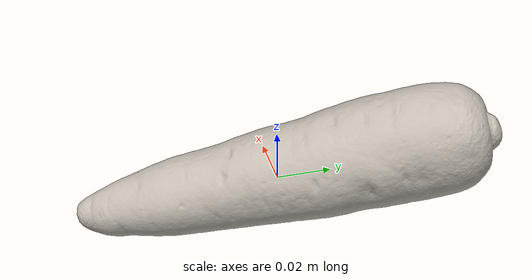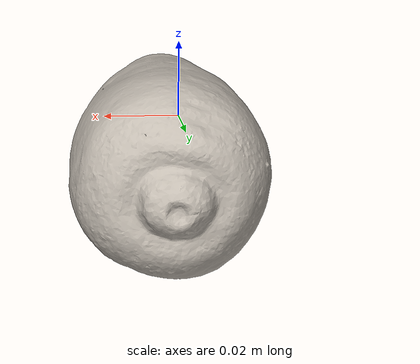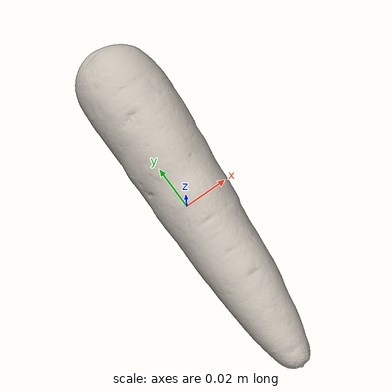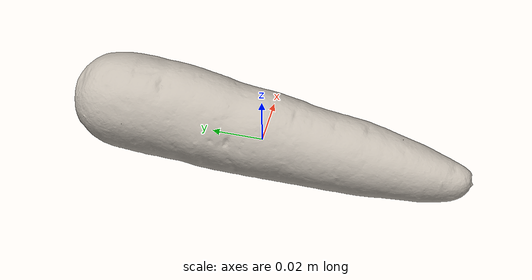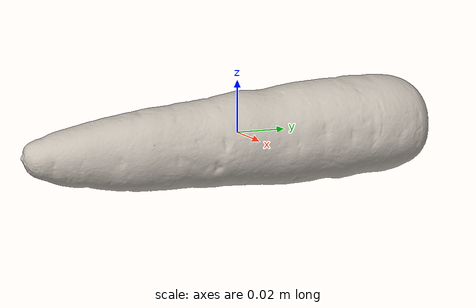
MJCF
<mujoco model="carrot_10">
  <asset>
    <mesh file="visual/model_normalized_0.obj" name="model_normalized_0_vis" scale="0.15999999999999998 0.15999999999999998 0.15999999999999998" refquat="0.6343932841636455 0.0 0.0 0.773010453362737"/>
    <mesh file="collision/model_normalized_collision_22.obj" name="model_normalized_collision_22._coll" scale="0.15999999999999998 0.15999999999999998 0.15999999999999998" refquat="0.6343932841636455 0.0 0.0 0.773010453362737"/>
    <mesh file="collision/model_normalized_collision_23.obj" name="model_normalized_collision_23._coll" scale="0.15999999999999998 0.15999999999999998 0.15999999999999998" refquat="0.6343932841636455 0.0 0.0 0.773010453362737"/>
    <mesh file="collision/model_normalized_collision_21.obj" name="model_normalized_collision_21._coll" scale="0.15999999999999998 0.15999999999999998 0.15999999999999998" refquat="0.6343932841636455 0.0 0.0 0.773010453362737"/>
    <mesh file="collision/model_normalized_collision_20.obj" name="model_normalized_collision_20._coll" scale="0.15999999999999998 0.15999999999999998 0.15999999999999998" refquat="0.6343932841636455 0.0 0.0 0.773010453362737"/>
    <mesh file="collision/model_normalized_collision_24.obj" name="model_normalized_collision_24._coll" scale="0.15999999999999998 0.15999999999999998 0.15999999999999998" refquat="0.6343932841636455 0.0 0.0 0.773010453362737"/>
    <mesh file="collision/model_normalized_collision_30.obj" name="model_normalized_collision_30._coll" scale="0.15999999999999998 0.15999999999999998 0.15999999999999998" refquat="0.6343932841636455 0.0 0.0 0.773010453362737"/>
    <mesh file="collision/model_normalized_collision_18.obj" name="model_normalized_collision_18._coll" scale="0.15999999999999998 0.15999999999999998 0.15999999999999998" refquat="0.6343932841636455 0.0 0.0 0.773010453362737"/>
    <mesh file="collision/model_normalized_collision_19.obj" name="model_normalized_collision_19._coll" scale="0.15999999999999998 0.15999999999999998 0.15999999999999998" refquat="0.6343932841636455 0.0 0.0 0.773010453362737"/>
    <mesh file="collision/model_normalized_collision_31.obj" name="model_normalized_collision_31._coll" scale="0.15999999999999998 0.15999999999999998 0.15999999999999998" refquat="0.6343932841636455 0.0 0.0 0.773010453362737"/>
    <mesh file="collision/model_normalized_collision_25.obj" name="model_normalized_collision_25._coll" scale="0.15999999999999998 0.15999999999999998 0.15999999999999998" refquat="0.6343932841636455 0.0 0.0 0.773010453362737"/>
    <mesh file="collision/model_normalized_collision_27.obj" name="model_normalized_collision_27._coll" scale="0.15999999999999998 0.15999999999999998 0.15999999999999998" refquat="0.6343932841636455 0.0 0.0 0.773010453362737"/>
    <mesh file="collision/model_normalized_collision_26.obj" name="model_normalized_collision_26._coll" scale="0.15999999999999998 0.15999999999999998 0.15999999999999998" refquat="0.6343932841636455 0.0 0.0 0.773010453362737"/>
    <mesh file="collision/model_normalized_collision_9.obj" name="model_normalized_collision_9._coll" scale="0.15999999999999998 0.15999999999999998 0.15999999999999998" refquat="0.6343932841636455 0.0 0.0 0.773010453362737"/>
    <mesh file="collision/model_normalized_collision_8.obj" name="model_normalized_collision_8._coll" scale="0.15999999999999998 0.15999999999999998 0.15999999999999998" refquat="0.6343932841636455 0.0 0.0 0.773010453362737"/>
    <mesh file="collision/model_normalized_collision_6.obj" name="model_normalized_collision_6._coll" scale="0.15999999999999998 0.15999999999999998 0.15999999999999998" refquat="0.6343932841636455 0.0 0.0 0.773010453362737"/>
    <mesh file="collision/model_normalized_collision_7.obj" name="model_normalized_collision_7._coll" scale="0.15999999999999998 0.15999999999999998 0.15999999999999998" refquat="0.6343932841636455 0.0 0.0 0.773010453362737"/>
    <mesh file="collision/model_normalized_collision_5.obj" name="model_normalized_collision_5._coll" scale="0.15999999999999998 0.15999999999999998 0.15999999999999998" refquat="0.6343932841636455 0.0 0.0 0.773010453362737"/>
    <mesh file="collision/model_normalized_collision_4.obj" name="model_normalized_collision_4._coll" scale="0.15999999999999998 0.15999999999999998 0.15999999999999998" refquat="0.6343932841636455 0.0 0.0 0.773010453362737"/>
    <mesh file="collision/model_normalized_collision_0.obj" name="model_normalized_collision_0._coll" scale="0.15999999999999998 0.15999999999999998 0.15999999999999998" refquat="0.6343932841636455 0.0 0.0 0.773010453362737"/>
    <mesh file="collision/model_normalized_collision_1.obj" name="model_normalized_collision_1._coll" scale="0.15999999999999998 0.15999999999999998 0.15999999999999998" refquat="0.6343932841636455 0.0 0.0 0.773010453362737"/>
    <mesh file="collision/model_normalized_collision_3.obj" name="model_normalized_collision_3._coll" scale="0.15999999999999998 0.15999999999999998 0.15999999999999998" refquat="0.6343932841636455 0.0 0.0 0.773010453362737"/>
    <mesh file="collision/model_normalized_collision_2.obj" name="model_normalized_collision_2._coll" scale="0.15999999999999998 0.15999999999999998 0.15999999999999998" refquat="0.6343932841636455 0.0 0.0 0.773010453362737"/>
    <mesh file="collision/model_normalized_collision_17.obj" name="model_normalized_collision_17._coll" scale="0.15999999999999998 0.15999999999999998 0.15999999999999998" refquat="0.6343932841636455 0.0 0.0 0.773010453362737"/>
    <mesh file="collision/model_normalized_collision_16.obj" name="model_normalized_collision_16._coll" scale="0.15999999999999998 0.15999999999999998 0.15999999999999998" refquat="0.6343932841636455 0.0 0.0 0.773010453362737"/>
    <mesh file="collision/model_normalized_collision_28.obj" name="model_normalized_collision_28._coll" scale="0.15999999999999998 0.15999999999999998 0.15999999999999998" refquat="0.6343932841636455 0.0 0.0 0.773010453362737"/>
    <mesh file="collision/model_normalized_collision_14.obj" name="model_normalized_collision_14._coll" scale="0.15999999999999998 0.15999999999999998 0.15999999999999998" refquat="0.6343932841636455 0.0 0.0 0.773010453362737"/>
    <mesh file="collision/model_normalized_collision_15.obj" name="model_normalized_collision_15._coll" scale="0.15999999999999998 0.15999999999999998 0.15999999999999998" refquat="0.6343932841636455 0.0 0.0 0.773010453362737"/>
    <mesh file="collision/model_normalized_collision_29.obj" name="model_normalized_collision_29._coll" scale="0.15999999999999998 0.15999999999999998 0.15999999999999998" refquat="0.6343932841636455 0.0 0.0 0.773010453362737"/>
    <mesh file="collision/model_normalized_collision_11.obj" name="model_normalized_collision_11._coll" scale="0.15999999999999998 0.15999999999999998 0.15999999999999998" refquat="0.6343932841636455 0.0 0.0 0.773010453362737"/>
    <mesh file="collision/model_normalized_collision_10.obj" name="model_normalized_collision_10._coll" scale="0.15999999999999998 0.15999999999999998 0.15999999999999998" refquat="0.6343932841636455 0.0 0.0 0.773010453362737"/>
    <mesh file="collision/model_normalized_collision_12.obj" name="model_normalized_collision_12._coll" scale="0.15999999999999998 0.15999999999999998 0.15999999999999998" refquat="0.6343932841636455 0.0 0.0 0.773010453362737"/>
    <mesh file="collision/model_normalized_collision_13.obj" name="model_normalized_collision_13._coll" scale="0.15999999999999998 0.15999999999999998 0.15999999999999998" refquat="0.6343932841636455 0.0 0.0 0.773010453362737"/>
    <texture type="2d" name="image0" file="visual/image0.png"/>
    <material name="material_0.023" texture="image0" specular="0.5" shininess="0.359999993"/>
  </asset>
  <worldbody>
  <body>
      <body name="object">
        <geom solimp="0.998 0.998 0.001" solref="0.001 1" density="100" friction="0.95 0.3 0.1" type="mesh" mesh="model_normalized_0_vis" conaffinity="0" contype="0" group="1" material="material_0.023"/>
        <geom solimp="0.998 0.998 0.001" solref="0.001 1" density="100" friction="0.95 0.3 0.1" type="mesh" mesh="model_normalized_collision_22._coll" group="0" rgba="0.8 0.8 0.8 0.0"/>
        <geom solimp="0.998 0.998 0.001" solref="0.001 1" density="100" friction="0.95 0.3 0.1" type="mesh" mesh="model_normalized_collision_23._coll" group="0" rgba="0.8 0.8 0.8 0.0"/>
        <geom solimp="0.998 0.998 0.001" solref="0.001 1" density="100" friction="0.95 0.3 0.1" type="mesh" mesh="model_normalized_collision_21._coll" group="0" rgba="0.8 0.8 0.8 0.0"/>
        <geom solimp="0.998 0.998 0.001" solref="0.001 1" density="100" friction="0.95 0.3 0.1" type="mesh" mesh="model_normalized_collision_20._coll" group="0" rgba="0.8 0.8 0.8 0.0"/>
        <geom solimp="0.998 0.998 0.001" solref="0.001 1" density="100" friction="0.95 0.3 0.1" type="mesh" mesh="model_normalized_collision_24._coll" group="0" rgba="0.8 0.8 0.8 0.0"/>
        <geom solimp="0.998 0.998 0.001" solref="0.001 1" density="100" friction="0.95 0.3 0.1" type="mesh" mesh="model_normalized_collision_30._coll" group="0" rgba="0.8 0.8 0.8 0.0"/>
        <geom solimp="0.998 0.998 0.001" solref="0.001 1" density="100" friction="0.95 0.3 0.1" type="mesh" mesh="model_normalized_collision_18._coll" group="0" rgba="0.8 0.8 0.8 0.0"/>
        <geom solimp="0.998 0.998 0.001" solref="0.001 1" density="100" friction="0.95 0.3 0.1" type="mesh" mesh="model_normalized_collision_19._coll" group="0" rgba="0.8 0.8 0.8 0.0"/>
        <geom solimp="0.998 0.998 0.001" solref="0.001 1" density="100" friction="0.95 0.3 0.1" type="mesh" mesh="model_normalized_collision_31._coll" group="0" rgba="0.8 0.8 0.8 0.0"/>
        <geom solimp="0.998 0.998 0.001" solref="0.001 1" density="100" friction="0.95 0.3 0.1" type="mesh" mesh="model_normalized_collision_25._coll" group="0" rgba="0.8 0.8 0.8 0.0"/>
        <geom solimp="0.998 0.998 0.001" solref="0.001 1" density="100" friction="0.95 0.3 0.1" type="mesh" mesh="model_normalized_collision_27._coll" group="0" rgba="0.8 0.8 0.8 0.0"/>
        <geom solimp="0.998 0.998 0.001" solref="0.001 1" density="100" friction="0.95 0.3 0.1" type="mesh" mesh="model_normalized_collision_26._coll" group="0" rgba="0.8 0.8 0.8 0.0"/>
        <geom solimp="0.998 0.998 0.001" solref="0.001 1" density="100" friction="0.95 0.3 0.1" type="mesh" mesh="model_normalized_collision_9._coll" group="0" rgba="0.8 0.8 0.8 0.0"/>
        <geom solimp="0.998 0.998 0.001" solref="0.001 1" density="100" friction="0.95 0.3 0.1" type="mesh" mesh="model_normalized_collision_8._coll" group="0" rgba="0.8 0.8 0.8 0.0"/>
        <geom solimp="0.998 0.998 0.001" solref="0.001 1" density="100" friction="0.95 0.3 0.1" type="mesh" mesh="model_normalized_collision_6._coll" group="0" rgba="0.8 0.8 0.8 0.0"/>
        <geom solimp="0.998 0.998 0.001" solref="0.001 1" density="100" friction="0.95 0.3 0.1" type="mesh" mesh="model_normalized_collision_7._coll" group="0" rgba="0.8 0.8 0.8 0.0"/>
        <geom solimp="0.998 0.998 0.001" solref="0.001 1" density="100" friction="0.95 0.3 0.1" type="mesh" mesh="model_normalized_collision_5._coll" group="0" rgba="0.8 0.8 0.8 0.0"/>
        <geom solimp="0.998 0.998 0.001" solref="0.001 1" density="100" friction="0.95 0.3 0.1" type="mesh" mesh="model_normalized_collision_4._coll" group="0" rgba="0.8 0.8 0.8 0.0"/>
        <geom solimp="0.998 0.998 0.001" solref="0.001 1" density="100" friction="0.95 0.3 0.1" type="mesh" mesh="model_normalized_collision_0._coll" group="0" rgba="0.8 0.8 0.8 0.0"/>
        <geom solimp="0.998 0.998 0.001" solref="0.001 1" density="100" friction="0.95 0.3 0.1" type="mesh" mesh="model_normalized_collision_1._coll" group="0" rgba="0.8 0.8 0.8 0.0"/>
        <geom solimp="0.998 0.998 0.001" solref="0.001 1" density="100" friction="0.95 0.3 0.1" type="mesh" mesh="model_normalized_collision_3._coll" group="0" rgba="0.8 0.8 0.8 0.0"/>
        <geom solimp="0.998 0.998 0.001" solref="0.001 1" density="100" friction="0.95 0.3 0.1" type="mesh" mesh="model_normalized_collision_2._coll" group="0" rgba="0.8 0.8 0.8 0.0"/>
        <geom solimp="0.998 0.998 0.001" solref="0.001 1" density="100" friction="0.95 0.3 0.1" type="mesh" mesh="model_normalized_collision_17._coll" group="0" rgba="0.8 0.8 0.8 0.0"/>
        <geom solimp="0.998 0.998 0.001" solref="0.001 1" density="100" friction="0.95 0.3 0.1" type="mesh" mesh="model_normalized_collision_16._coll" group="0" rgba="0.8 0.8 0.8 0.0"/>
        <geom solimp="0.998 0.998 0.001" solref="0.001 1" density="100" friction="0.95 0.3 0.1" type="mesh" mesh="model_normalized_collision_28._coll" group="0" rgba="0.8 0.8 0.8 0.0"/>
        <geom solimp="0.998 0.998 0.001" solref="0.001 1" density="100" friction="0.95 0.3 0.1" type="mesh" mesh="model_normalized_collision_14._coll" group="0" rgba="0.8 0.8 0.8 0.0"/>
        <geom solimp="0.998 0.998 0.001" solref="0.001 1" density="100" friction="0.95 0.3 0.1" type="mesh" mesh="model_normalized_collision_15._coll" group="0" rgba="0.8 0.8 0.8 0.0"/>
        <geom solimp="0.998 0.998 0.001" solref="0.001 1" density="100" friction="0.95 0.3 0.1" type="mesh" mesh="model_normalized_collision_29._coll" group="0" rgba="0.8 0.8 0.8 0.0"/>
        <geom solimp="0.998 0.998 0.001" solref="0.001 1" density="100" friction="0.95 0.3 0.1" type="mesh" mesh="model_normalized_collision_11._coll" group="0" rgba="0.8 0.8 0.8 0.0"/>
        <geom solimp="0.998 0.998 0.001" solref="0.001 1" density="100" friction="0.95 0.3 0.1" type="mesh" mesh="model_normalized_collision_10._coll" group="0" rgba="0.8 0.8 0.8 0.0"/>
        <geom solimp="0.998 0.998 0.001" solref="0.001 1" density="100" friction="0.95 0.3 0.1" type="mesh" mesh="model_normalized_collision_12._coll" group="0" rgba="0.8 0.8 0.8 0.0"/>
        <geom solimp="0.998 0.998 0.001" solref="0.001 1" density="100" friction="0.95 0.3 0.1" type="mesh" mesh="model_normalized_collision_13._coll" group="0" rgba="0.8 0.8 0.8 0.0"/>
      </body>
      <site rgba="0 0 0 0" size="0.005" pos="0.006735058609085369 -0.0003554918224241232 -0.020154155199999996" name="bottom_site"/>
      <site rgba="0 0 0 0" size="0.005" pos="0.006735058609085369 -0.0003554918224241232 0.020564060799999995" name="top_site"/>
      <site rgba="0 0 0 0" size="0.005" pos="0.025829871869964216 0.07987258892046259 0.00020495280000000003" name="horizontal_radius_site"/>
    </body>
    </worldbody>
</mujoco>
